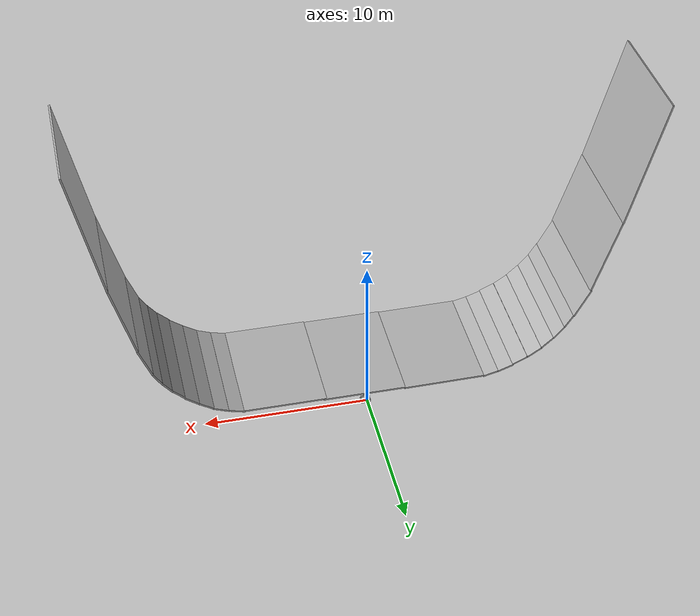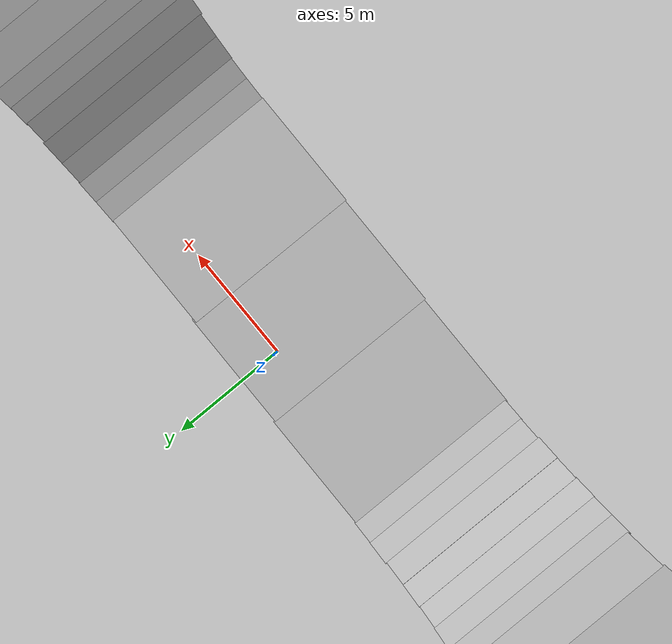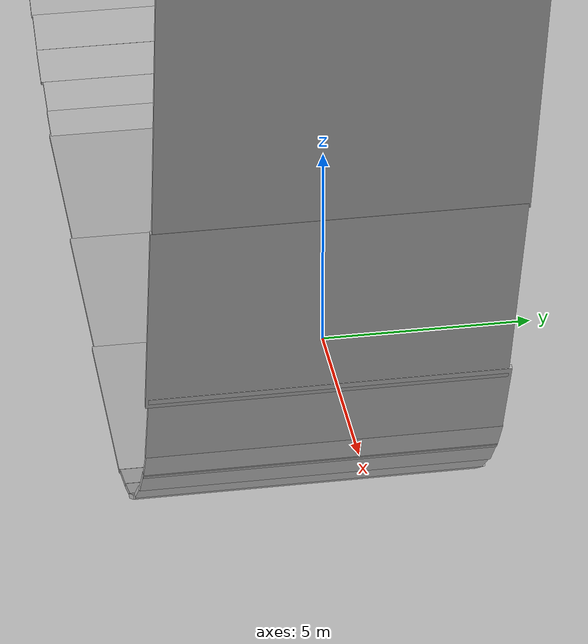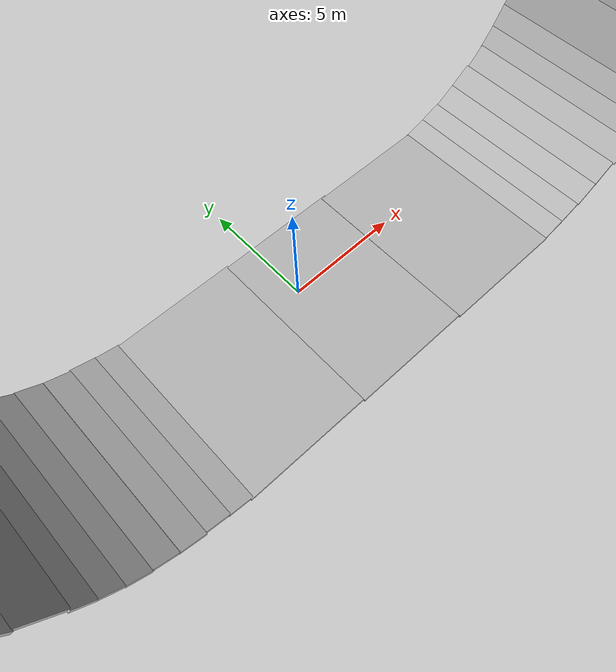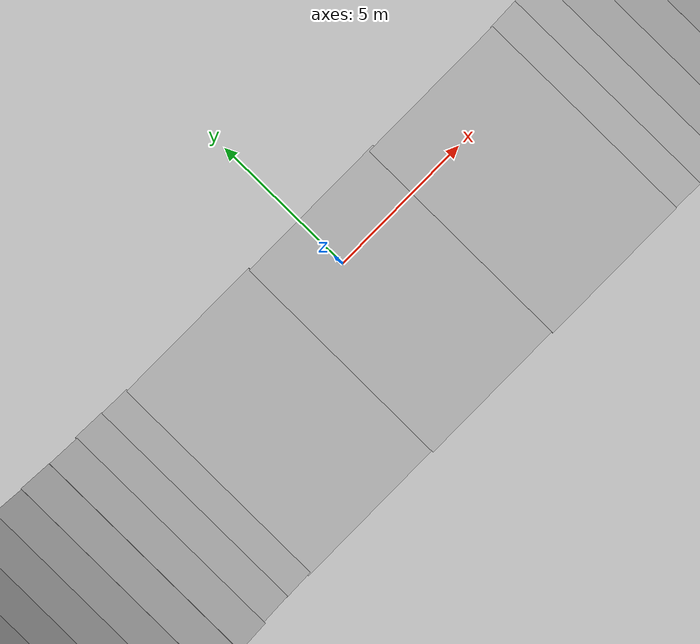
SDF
<sdf version="1.5">
 <world name="default">
  <scene><grid>false</grid></scene>
  <include><uri>model://ground_plane</uri></include>
  <include><uri>model://sun</uri></include>
  <include><uri>model://car</uri></include>
  <model name="ground">
   <link name="body">
    <collision name="geom">
     <geometry><plane><normal>0 0 1</normal></plane></geometry>
     <surface><friction><ode><mu>100</mu><mu2>50</mu2></ode></friction></surface>
    </collision>
   </link>
   <static>true</static>
  </model>
  <scene>
   <grid>0</grid>
   <ambient>0.4 0.4 0.4 1</ambient>
   <background>0.7 0.7 0.7 1</background>
   <shadows>1</shadows>
  </scene>
  <scene>
   <grid>0</grid>
   <ambient>0.4 0.4 0.4 1</ambient>
   <background>0.7 0.7 0.7 1</background>
   <shadows>1</shadows>
  </scene>
  <scene>
   <grid>0</grid>
   <ambient>0.4 0.4 0.4 1</ambient>
   <background>0.7 0.7 0.7 1</background>
   <shadows>1</shadows>
  </scene>
  <model name="box1">
   <static>1</static>
   <pose>-15.7971 -1.93894 16.0347 0 1.3 0</pose>
   <link name="link">
    <collision name="collision"><geometry><box><size>8 7.34 0.1</size></box></geometry></collision>
    <visual name="visual"><geometry><box><size>8 7.34 0.1</size></box></geometry></visual>
   </link>
  </model>
  <model name="box2">
   <static>1</static>
   <pose>-13.9546 -1.96365 9.86468 0 1.25 0</pose>
   <link name="link">
    <collision name="collision"><geometry><box><size>5 7.34 0.1</size></box></geometry></collision>
    <visual name="visual"><geometry><box><size>5 7.34 0.1</size></box></geometry></visual>
   </link>
  </model>
  <model name="box3">
   <static>1</static>
   <pose>-12.7345 -1.90568 6.70199 0 1.07879 0</pose>
   <link name="link">
    <collision name="collision"><geometry><box><size>2 7.34 0.1</size></box></geometry></collision>
    <visual name="visual"><geometry><box><size>2 7.34 0.1</size></box></geometry></visual>
   </link>
  </model>
  <model name="box4">
   <static>1</static>
   <pose>-12.0288 -1.95298 5.45892 0 1 0</pose>
   <link name="link">
    <collision name="collision"><geometry><box><size>1 7.34 0.1</size></box></geometry></collision>
    <visual name="visual"><geometry><box><size>1 7.34 0.1</size></box></geometry></visual>
   </link>
  </model>
  <gravity>0 0 -9.8</gravity>
  <magnetic_field>6e-06 2.3e-05 -4.2e-05</magnetic_field>
  <atmosphere type="adiabatic"/>
  <physics type="ode">
   <max_step_size>0.001</max_step_size>
   <real_time_factor>1</real_time_factor>
   <real_time_update_rate>1000</real_time_update_rate>
  </physics>
  <spherical_coordinates>
   <surface_model>EARTH_WGS84</surface_model>
   <latitude_deg>0</latitude_deg>
   <longitude_deg>0</longitude_deg>
   <elevation>0</elevation>
   <heading_deg>0</heading_deg>
  </spherical_coordinates>
  <model name="box4_clone">
   <static>1</static>
   <pose>-11.4372 -1.95416 4.6597 0 0.866937 0</pose>
   <link name="link">
    <collision name="collision"><geometry><box><size>1 7.34 0.1</size></box></geometry></collision>
    <visual name="visual"><geometry><box><size>1 7.34 0.1</size></box></geometry></visual>
   </link>
  </model>
  <model name="box4_clone_clone">
   <static>1</static>
   <pose>-10.7516 -1.97335 3.95794 0 0.731359 0</pose>
   <link name="link">
    <collision name="collision"><geometry><box><size>1 7.34 0.1</size></box></geometry></collision>
    <visual name="visual"><geometry><box><size>1 7.34 0.1</size></box></geometry></visual>
   </link>
  </model>
  <model name="box4_clone_clone_clone">
   <static>1</static>
   <pose>-9.98301 -1.94929 3.37654 0 0.581043 0</pose>
   <link name="link">
    <collision name="collision"><geometry><box><size>1 7.34 0.1</size></box></geometry></collision>
    <visual name="visual"><geometry><box><size>1 7.34 0.1</size></box></geometry></visual>
   </link>
  </model>
  <model name="box4_clone_clone_clone_clone">
   <static>1</static>
   <pose>-9.09861 -1.95741 2.88893 0 0.434816 0</pose>
   <link name="link">
    <collision name="collision"><geometry><box><size>1 7.34 0.1</size></box></geometry></collision>
    <visual name="visual"><geometry><box><size>1 7.34 0.1</size></box></geometry></visual>
   </link>
  </model>
  <model name="box4_clone_clone_clone_clone_clone">
   <static>1</static>
   <pose>-8.18948 -1.90732 2.50992 0 0.351337 0</pose>
   <link name="link">
    <collision name="collision"><geometry><box><size>1 7.34 0.1</size></box></geometry></collision>
    <visual name="visual"><geometry><box><size>1 7.34 0.1</size></box></geometry></visual>
   </link>
  </model>
  <model name="box4_clone_clone_clone_clone_clone_clone">
   <static>1</static>
   <pose>-7.31607 -1.92122 2.23645 0 0.252904 0</pose>
   <link name="link">
    <collision name="collision"><geometry><box><size>1 7.34 0.1</size></box></geometry></collision>
    <visual name="visual"><geometry><box><size>1 7.34 0.1</size></box></geometry></visual>
   </link>
  </model>
  <model name="box2_clone">
   <static>1</static>
   <pose>-4.45984 -1.96575 2.0894 -0.000283 0.012967 -0.003341</pose>
   <link name="link">
    <collision name="collision"><geometry><box><size>5 7.34 0.1</size></box></geometry></collision>
    <visual name="visual"><geometry><box><size>5 7.34 0.1</size></box></geometry></visual>
   </link>
  </model>
  <model name="box2_clone_clone">
   <static>1</static>
   <pose>0.49797 -2.03784 2.04694 -0.000283 0.004307 -0.003338</pose>
   <link name="link">
    <collision name="collision"><geometry><box><size>5 7.34 0.1</size></box></geometry></collision>
    <visual name="visual"><geometry><box><size>5 7.34 0.1</size></box></geometry></visual>
   </link>
  </model>
  <model name="box1_clone">
   <static>1</static>
   <pose>-878.821 5062.71 16.2056 0 1.3 0</pose>
   <link name="link">
    <collision name="collision"><geometry><box><size>8 7.34 0.1</size></box></geometry></collision>
    <visual name="visual"><geometry><box><size>8 7.34 0.1</size></box></geometry></visual>
   </link>
  </model>
  <model name="box2_clone_clone_clone">
   <static>1</static>
   <pose>5.29603 -2.10195 2.02777 -0.000283 0.004307 -0.003338</pose>
   <link name="link">
    <collision name="collision"><geometry><box><size>5 7.34 0.1</size></box></geometry></collision>
    <visual name="visual"><geometry><box><size>5 7.34 0.1</size></box></geometry></visual>
   </link>
  </model>
  <model name="box4_clone_clone_clone_clone_clone_clone_clone">
   <static>1</static>
   <pose>8.22064 -2.08831 2.12816 0 -0.259839 0</pose>
   <link name="link">
    <collision name="collision"><geometry><box><size>1 7.34 0.1</size></box></geometry></collision>
    <visual name="visual"><geometry><box><size>1 7.34 0.1</size></box></geometry></visual>
   </link>
  </model>
  <model name="box4_clone_clone_clone_clone_clone_clone_clone_clone">
   <static>1</static>
   <pose>9.12728 -2.08747 2.41192 0 -0.362159 0</pose>
   <link name="link">
    <collision name="collision"><geometry><box><size>1 7.34 0.1</size></box></geometry></collision>
    <visual name="visual"><geometry><box><size>1 7.34 0.1</size></box></geometry></visual>
   </link>
  </model>
  <model name="box4_clone_clone_clone_clone_clone_clone_clone_clone_clone">
   <static>1</static>
   <pose>9.99014 -2.11227 2.84344 0 -0.558533 0</pose>
   <link name="link">
    <collision name="collision"><geometry><box><size>1 7.34 0.1</size></box></geometry></collision>
    <visual name="visual"><geometry><box><size>1 7.34 0.1</size></box></geometry></visual>
   </link>
  </model>
  <model name="box4_clone_clone_clone_clone_clone_clone_clone_clone_clone_clone">
   <static>1</static>
   <pose>10.8041 -2.11744 3.39677 0 -0.634426 0</pose>
   <link name="link">
    <collision name="collision"><geometry><box><size>1 7.34 0.1</size></box></geometry></collision>
    <visual name="visual"><geometry><box><size>1 7.34 0.1</size></box></geometry></visual>
   </link>
  </model>
  <model name="box4_clone_clone_clone_clone_clone_clone_clone_clone_clone_clone_clone">
   <static>1</static>
   <pose>11.548 -2.17842 4.01308 0 -0.756697 0</pose>
   <link name="link">
    <collision name="collision"><geometry><box><size>1 7.34 0.1</size></box></geometry></collision>
    <visual name="visual"><geometry><box><size>1 7.34 0.1</size></box></geometry></visual>
   </link>
  </model>
  <model name="box4_clone_clone_clone_clone_clone_clone_clone_clone_clone_clone_clone_clone">
   <static>1</static>
   <pose>12.1799 -2.15575 4.69531 0 -0.90249 0</pose>
   <link name="link">
    <collision name="collision"><geometry><box><size>1 7.34 0.1</size></box></geometry></collision>
    <visual name="visual"><geometry><box><size>1 7.34 0.1</size></box></geometry></visual>
   </link>
  </model>
  <model name="box4_clone_clone_clone_clone_clone_clone_clone_clone_clone_clone_clone_clone_clone">
   <static>1</static>
   <pose>12.6634 -2.14306 5.38227 0 -1.01454 0</pose>
   <link name="link">
    <collision name="collision"><geometry><box><size>1 7.34 0.1</size></box></geometry></collision>
    <visual name="visual"><geometry><box><size>1 7.34 0.1</size></box></geometry></visual>
   </link>
  </model>
  <model name="box3_clone">
   <static>1</static>
   <pose>13.294 -2.15474 6.73099 0 -1.1916 0</pose>
   <link name="link">
    <collision name="collision"><geometry><box><size>2 7.34 0.1</size></box></geometry></collision>
    <visual name="visual"><geometry><box><size>2 7.34 0.1</size></box></geometry></visual>
   </link>
  </model>
  <model name="box2_clone_0">
   <static>1</static>
   <pose>14.2652 -2.21399 9.82165 3.14159 1.29269 3.14159</pose>
   <link name="link">
    <collision name="collision"><geometry><box><size>5 7.34 0.1</size></box></geometry></collision>
    <visual name="visual"><geometry><box><size>5 7.34 0.1</size></box></geometry></visual>
   </link>
  </model>
  <model name="box1_clone_0">
   <static>1</static>
   <pose>15.781 -2.18203 16.0208 3.14159 1.35334 3.14159</pose>
   <link name="link">
    <collision name="collision"><geometry><box><size>8 7.34 0.1</size></box></geometry></collision>
    <visual name="visual"><geometry><box><size>8 7.34 0.1</size></box></geometry></visual>
   </link>
  </model>
 </world>
</sdf>

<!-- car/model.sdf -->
<sdf version='1.4'>
  <model name="my_robot">
    <link name='my_robot'>
       <pose>0 0 .1 0 0 0</pose>

       <collision name='collision'>
         <geometry>
           <box>
             <size>.2 .5 .2</size>
           </box>
         </geometry>
       </collision>

       <visual name='visual'>
         <geometry>
           <box>
             <size>.2 .5 .2</size>
           </box>
         </geometry>
       </visual>
     </link>

     <collision name='caster_collision'>
       <pose>-0.15 0 -0.05 0 0 0</pose>
       <geometry>
           <sphere>
           <radius>.05</radius>
         </sphere>
       </geometry>

       <surface>
         <friction>
           <ode>
             <mu>0</mu>
             <mu2>0</mu2>
             <slip1>1.0</slip1>
             <slip2>1.0</slip2>
           </ode>
         </friction>
       </surface>
     </collision>

     <visual name='caster_visual'>
       <pose>-0.15 0 -0.05 0 0 0</pose>
       <geometry>
         <sphere>
           <radius>.05</radius>
         </sphere>
       </geometry>
     </visual>

     <link name="left_wheel">
       <pose>0.1 0.13 0.1 0 1.5707 1.5707</pose>
       <collision name="collision">
         <geometry>
           <cylinder>
             <radius>0.3</radius>
             <length>.1</length>
           </cylinder>
         </geometry>
       </collision>
       <visual name="visual">
         <geometry>
           <cylinder>
             <radius>0.3</radius>
             <length>.1</length>
           </cylinder>
         </geometry>
       </visual>
     </link>

     <link name="right_wheel">
       <pose>0.1 -0.13 0.1 0 1.5707 1.5707</pose>
       <collision name="collision">
         <geometry>
           <cylinder>
             <radius>0.3</radius>
             <length>.1</length>
           </cylinder>
         </geometry>
       </collision>
       <visual name="visual">
         <geometry>
           <cylinder>
             <radius>0.3</radius>
             <length>.1</length>
           </cylinder>
         </geometry>
       </visual>
     </link>

     <joint type="revolute" name="left_wheel_hinge">
       <pose>0 0 -0.03 0 0 0</pose>
       <child>left_wheel</child>
       <parent>my_robot</parent>
       <axis>
         <xyz>0 1 0</xyz>
       </axis>
     </joint>

     <joint type="revolute" name="right_wheel_hinge">
       <pose>0 0 0.03 0 0 0</pose>
       <child>right_wheel</child>
       <parent>my_robot</parent>
       <axis>
         <xyz>0 1 0</xyz>
       </axis>
     </joint>

  </model>
</sdf>
